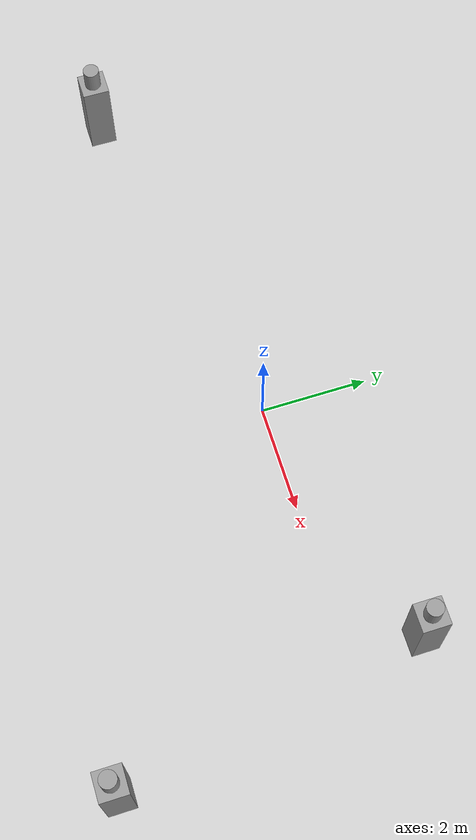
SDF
<sdf version="1.6">
 <world name="default">
  <light name="sun" type="directional">
   <pose>0 0 10 0 -0 0</pose>
   <diffuse>0.8 0.8 0.8 1</diffuse>
   <specular>0.2 0.2 0.2 1</specular>
   <attenuation>
    <range>1000</range>
    <constant>0.9</constant>
    <linear>0.01</linear>
    <quadratic>0.001</quadratic>
   </attenuation>
   <direction>-0.5 0.1 -0.9</direction>
  </light>
  <model name="ground_plane">
   <static>1</static>
   <link name="link">
    <collision name="collision">
     <geometry><plane><normal>0 0 1</normal><size>100 100</size></plane></geometry>
     <surface>
      <contact><collide_bitmask>65535</collide_bitmask></contact>
      <friction><ode><mu>100</mu><mu2>50</mu2></ode></friction>
     </surface>
    </collision>
    <visual name="visual">
     <cast_shadows>0</cast_shadows>
     <geometry><plane><normal>0 0 1</normal><size>100 100</size></plane></geometry>
     <material>
      <script><uri>file://media/materials/scripts/gazebo.material</uri><name>Gazebo/Grey</name></script>
     </material>
    </visual>
   </link>
  </model>
  <physics name="default_physics" default="0" type="ode">
   <real_time_update_rate>1000</real_time_update_rate>
   <max_step_size>0.001</max_step_size>
   <real_time_factor>1</real_time_factor>
   <ode>
    <solver>
     <type>quick</type>
     <iters>150</iters>
     <precon_iters>0</precon_iters>
     <sor>1.4</sor>
     <use_dynamic_moi_rescaling>1</use_dynamic_moi_rescaling>
    </solver>
    <constraints>
     <cfm>1e-05</cfm>
     <erp>0.2</erp>
     <contact_max_correcting_vel>2000</contact_max_correcting_vel>
     <contact_surface_layer>0.01</contact_surface_layer>
    </constraints>
   </ode>
  </physics>
  <scene><ambient>0.4 0.4 0.4 1</ambient><background>0.7 0.7 0.7 1</background><shadows>1</shadows></scene>
  <gravity>0 0 -9.8</gravity>
  <magnetic_field>6e-06 2.3e-05 -4.2e-05</magnetic_field>
  <atmosphere type="adiabatic"/>
  <audio><device>default</device></audio>
  <spherical_coordinates>
   <surface_model>EARTH_WGS84</surface_model>
   <latitude_deg>0</latitude_deg>
   <longitude_deg>0</longitude_deg>
   <elevation>0</elevation>
   <heading_deg>0</heading_deg>
  </spherical_coordinates>
  <model name="Person">
   <link name="link_1">
    <inertial>
     <mass>1</mass>
     <inertia>
      <ixx>0.166667</ixx>
      <ixy>0</ixy>
      <ixz>0</ixz>
      <iyy>0.166667</iyy>
      <iyz>0</iyz>
      <izz>0.166667</izz>
     </inertia>
     <pose>0 0 0.8 0 -0 0</pose>
    </inertial>
    <pose>0 0 0.8 0 -0 0</pose>
    <visual name="visual">
     <geometry><box><size>0.5 0.5 1.6</size></box></geometry>
     <material>
      <lighting>1</lighting>
      <script><uri>file://media/materials/scripts/gazebo.material</uri><name>Gazebo/Grey</name></script>
      <shader type="vertex"><normal_map>__default__</normal_map></shader>
      <ambient>0.3 0.3 0.3 1</ambient>
      <diffuse>0.7 0.7 0.7 1</diffuse>
      <specular>0.01 0.01 0.01 1</specular>
      <emissive>0 0 0 1</emissive>
     </material>
    </visual>
    <collision name="collision">
     <geometry><box><size>0.5 0.5 1.6</size></box></geometry>
     <surface>
      <friction>
       <ode><mu>1</mu><mu2>1</mu2><fdir1>0 0 0</fdir1><slip1>0</slip1><slip2>0</slip2></ode>
       <torsional>
        <coefficient>1</coefficient>
        <patch_radius>0</patch_radius>
        <surface_radius>0</surface_radius>
        <use_patch_radius>1</use_patch_radius>
        <ode><slip>0</slip></ode>
       </torsional>
      </friction>
      <bounce><restitution_coefficient>0</restitution_coefficient><threshold>1e+06</threshold></bounce>
      <contact>
       <collide_without_contact>0</collide_without_contact>
       <collide_without_contact_bitmask>1</collide_without_contact_bitmask>
       <collide_bitmask>1</collide_bitmask>
       <ode>
        <soft_cfm>0</soft_cfm>
        <soft_erp>0.2</soft_erp>
        <kp>1e+13</kp>
        <kd>1</kd>
        <max_vel>0.01</max_vel>
        <min_depth>0</min_depth>
       </ode>
       <bullet>
        <split_impulse>1</split_impulse>
        <split_impulse_penetration_threshold>-0.01</split_impulse_penetration_threshold>
        <soft_cfm>0</soft_cfm>
        <soft_erp>0.2</soft_erp>
        <kp>1e+13</kp>
        <kd>1</kd>
       </bullet>
      </contact>
     </surface>
    </collision>
   </link>
   <link name="link_4">
    <inertial>
     <mass>1</mass>
     <inertia><ixx>0.145833</ixx><ixy>0</ixy><ixz>0</ixz><iyy>0.145833</iyy><iyz>0</iyz><izz>0.125</izz></inertia>
    </inertial>
    <pose>0 0 1.8 0 -0 0</pose>
    <visual name="visual">
     <geometry><cylinder><radius>0.15</radius><length>0.4</length></cylinder></geometry>
     <material>
      <lighting>1</lighting>
      <script><uri>file://media/materials/scripts/gazebo.material</uri><name>Gazebo/Grey</name></script>
      <shader type="vertex"><normal_map>__default__</normal_map></shader>
      <ambient>0.3 0.3 0.3 1</ambient>
      <diffuse>0.7 0.7 0.7 1</diffuse>
      <specular>0.01 0.01 0.01 1</specular>
      <emissive>0 0 0 1</emissive>
     </material>
    </visual>
    <collision name="collision">
     <geometry><cylinder><radius>0.15</radius><length>0.4</length></cylinder></geometry>
     <surface>
      <friction>
       <ode><mu>1</mu><mu2>1</mu2><fdir1>0 0 0</fdir1><slip1>0</slip1><slip2>0</slip2></ode>
       <torsional>
        <coefficient>1</coefficient>
        <patch_radius>0</patch_radius>
        <surface_radius>0</surface_radius>
        <use_patch_radius>1</use_patch_radius>
        <ode><slip>0</slip></ode>
       </torsional>
      </friction>
      <bounce><restitution_coefficient>0</restitution_coefficient><threshold>1e+06</threshold></bounce>
      <contact>
       <collide_without_contact>0</collide_without_contact>
       <collide_without_contact_bitmask>1</collide_without_contact_bitmask>
       <collide_bitmask>1</collide_bitmask>
       <ode>
        <soft_cfm>0</soft_cfm>
        <soft_erp>0.2</soft_erp>
        <kp>1e+13</kp>
        <kd>1</kd>
        <max_vel>0.01</max_vel>
        <min_depth>0</min_depth>
       </ode>
       <bullet>
        <split_impulse>1</split_impulse>
        <split_impulse_penetration_threshold>-0.01</split_impulse_penetration_threshold>
        <soft_cfm>0</soft_cfm>
        <soft_erp>0.2</soft_erp>
        <kp>1e+13</kp>
        <kd>1</kd>
       </bullet>
      </contact>
     </surface>
    </collision>
   </link>
   <joint name="link_4_JOINT_1" type="fixed">
    <parent>link_4</parent>
    <child>link_1</child>
    <physics>
     <ode><limit><cfm>0</cfm><erp>0.2</erp></limit><suspension><cfm>0</cfm><erp>0.2</erp></suspension></ode>
    </physics>
   </joint>
   <static>0</static>
   <pose>5.88471 -4.34345 1e-06 -2e-06 1e-06 -0.001049</pose>
  </model>
  <model name="Person_0">
   <link name="link_1">
    <inertial>
     <mass>1</mass>
     <inertia>
      <ixx>0.166667</ixx>
      <ixy>0</ixy>
      <ixz>0</ixz>
      <iyy>0.166667</iyy>
      <iyz>0</iyz>
      <izz>0.166667</izz>
     </inertia>
     <pose>0 0 0.8 0 -0 0</pose>
    </inertial>
    <pose>0 0 0.8 0 -0 0</pose>
    <visual name="visual">
     <geometry><box><size>0.5 0.5 1.6</size></box></geometry>
     <material>
      <lighting>1</lighting>
      <script><uri>file://media/materials/scripts/gazebo.material</uri><name>Gazebo/Grey</name></script>
      <shader type="vertex"><normal_map>__default__</normal_map></shader>
      <ambient>0.3 0.3 0.3 1</ambient>
      <diffuse>0.7 0.7 0.7 1</diffuse>
      <specular>0.01 0.01 0.01 1</specular>
      <emissive>0 0 0 1</emissive>
     </material>
    </visual>
    <collision name="collision">
     <geometry><box><size>0.5 0.5 1.6</size></box></geometry>
     <surface>
      <friction>
       <ode><mu>1</mu><mu2>1</mu2><fdir1>0 0 0</fdir1><slip1>0</slip1><slip2>0</slip2></ode>
       <torsional>
        <coefficient>1</coefficient>
        <patch_radius>0</patch_radius>
        <surface_radius>0</surface_radius>
        <use_patch_radius>1</use_patch_radius>
        <ode><slip>0</slip></ode>
       </torsional>
      </friction>
      <bounce><restitution_coefficient>0</restitution_coefficient><threshold>1e+06</threshold></bounce>
      <contact>
       <collide_without_contact>0</collide_without_contact>
       <collide_without_contact_bitmask>1</collide_without_contact_bitmask>
       <collide_bitmask>1</collide_bitmask>
       <ode>
        <soft_cfm>0</soft_cfm>
        <soft_erp>0.2</soft_erp>
        <kp>1e+13</kp>
        <kd>1</kd>
        <max_vel>0.01</max_vel>
        <min_depth>0</min_depth>
       </ode>
       <bullet>
        <split_impulse>1</split_impulse>
        <split_impulse_penetration_threshold>-0.01</split_impulse_penetration_threshold>
        <soft_cfm>0</soft_cfm>
        <soft_erp>0.2</soft_erp>
        <kp>1e+13</kp>
        <kd>1</kd>
       </bullet>
      </contact>
     </surface>
    </collision>
   </link>
   <link name="link_4">
    <inertial>
     <mass>1</mass>
     <inertia><ixx>0.145833</ixx><ixy>0</ixy><ixz>0</ixz><iyy>0.145833</iyy><iyz>0</iyz><izz>0.125</izz></inertia>
    </inertial>
    <pose>0 0 1.8 0 -0 0</pose>
    <visual name="visual">
     <geometry><cylinder><radius>0.15</radius><length>0.4</length></cylinder></geometry>
     <material>
      <lighting>1</lighting>
      <script><uri>file://media/materials/scripts/gazebo.material</uri><name>Gazebo/Grey</name></script>
      <shader type="vertex"><normal_map>__default__</normal_map></shader>
      <ambient>0.3 0.3 0.3 1</ambient>
      <diffuse>0.7 0.7 0.7 1</diffuse>
      <specular>0.01 0.01 0.01 1</specular>
      <emissive>0 0 0 1</emissive>
     </material>
    </visual>
    <collision name="collision">
     <geometry><cylinder><radius>0.15</radius><length>0.4</length></cylinder></geometry>
     <surface>
      <friction>
       <ode><mu>1</mu><mu2>1</mu2><fdir1>0 0 0</fdir1><slip1>0</slip1><slip2>0</slip2></ode>
       <torsional>
        <coefficient>1</coefficient>
        <patch_radius>0</patch_radius>
        <surface_radius>0</surface_radius>
        <use_patch_radius>1</use_patch_radius>
        <ode><slip>0</slip></ode>
       </torsional>
      </friction>
      <bounce><restitution_coefficient>0</restitution_coefficient><threshold>1e+06</threshold></bounce>
      <contact>
       <collide_without_contact>0</collide_without_contact>
       <collide_without_contact_bitmask>1</collide_without_contact_bitmask>
       <collide_bitmask>1</collide_bitmask>
       <ode>
        <soft_cfm>0</soft_cfm>
        <soft_erp>0.2</soft_erp>
        <kp>1e+13</kp>
        <kd>1</kd>
        <max_vel>0.01</max_vel>
        <min_depth>0</min_depth>
       </ode>
       <bullet>
        <split_impulse>1</split_impulse>
        <split_impulse_penetration_threshold>-0.01</split_impulse_penetration_threshold>
        <soft_cfm>0</soft_cfm>
        <soft_erp>0.2</soft_erp>
        <kp>1e+13</kp>
        <kd>1</kd>
       </bullet>
      </contact>
     </surface>
    </collision>
   </link>
   <joint name="link_4_JOINT_1" type="fixed">
    <parent>link_4</parent>
    <child>link_1</child>
    <physics>
     <ode><limit><cfm>0</cfm><erp>0.2</erp></limit><suspension><cfm>0</cfm><erp>0.2</erp></suspension></ode>
    </physics>
   </joint>
   <static>0</static>
   <pose>4.89306 1.28247 1e-06 2e-06 5e-06 -2e-06</pose>
  </model>
  <model name="Person_1">
   <link name="link_1">
    <inertial>
     <mass>1</mass>
     <inertia>
      <ixx>0.166667</ixx>
      <ixy>0</ixy>
      <ixz>0</ixz>
      <iyy>0.166667</iyy>
      <iyz>0</iyz>
      <izz>0.166667</izz>
     </inertia>
     <pose>0 0 0.8 0 -0 0</pose>
    </inertial>
    <pose>0 0 0.8 0 -0 0</pose>
    <visual name="visual">
     <geometry><box><size>0.5 0.5 1.6</size></box></geometry>
     <material>
      <lighting>1</lighting>
      <script><uri>file://media/materials/scripts/gazebo.material</uri><name>Gazebo/Grey</name></script>
      <shader type="vertex"><normal_map>__default__</normal_map></shader>
      <ambient>0.3 0.3 0.3 1</ambient>
      <diffuse>0.7 0.7 0.7 1</diffuse>
      <specular>0.01 0.01 0.01 1</specular>
      <emissive>0 0 0 1</emissive>
     </material>
    </visual>
    <collision name="collision">
     <geometry><box><size>0.5 0.5 1.6</size></box></geometry>
     <surface>
      <friction>
       <ode><mu>1</mu><mu2>1</mu2><fdir1>0 0 0</fdir1><slip1>0</slip1><slip2>0</slip2></ode>
       <torsional>
        <coefficient>1</coefficient>
        <patch_radius>0</patch_radius>
        <surface_radius>0</surface_radius>
        <use_patch_radius>1</use_patch_radius>
        <ode><slip>0</slip></ode>
       </torsional>
      </friction>
      <bounce><restitution_coefficient>0</restitution_coefficient><threshold>1e+06</threshold></bounce>
      <contact>
       <collide_without_contact>0</collide_without_contact>
       <collide_without_contact_bitmask>1</collide_without_contact_bitmask>
       <collide_bitmask>1</collide_bitmask>
       <ode>
        <soft_cfm>0</soft_cfm>
        <soft_erp>0.2</soft_erp>
        <kp>1e+13</kp>
        <kd>1</kd>
        <max_vel>0.01</max_vel>
        <min_depth>0</min_depth>
       </ode>
       <bullet>
        <split_impulse>1</split_impulse>
        <split_impulse_penetration_threshold>-0.01</split_impulse_penetration_threshold>
        <soft_cfm>0</soft_cfm>
        <soft_erp>0.2</soft_erp>
        <kp>1e+13</kp>
        <kd>1</kd>
       </bullet>
      </contact>
     </surface>
    </collision>
   </link>
   <link name="link_4">
    <inertial>
     <mass>1</mass>
     <inertia><ixx>0.145833</ixx><ixy>0</ixy><ixz>0</ixz><iyy>0.145833</iyy><iyz>0</iyz><izz>0.125</izz></inertia>
    </inertial>
    <pose>0 0 1.8 0 -0 0</pose>
    <visual name="visual">
     <geometry><cylinder><radius>0.15</radius><length>0.4</length></cylinder></geometry>
     <material>
      <lighting>1</lighting>
      <script><uri>file://media/materials/scripts/gazebo.material</uri><name>Gazebo/Grey</name></script>
      <shader type="vertex"><normal_map>__default__</normal_map></shader>
      <ambient>0.3 0.3 0.3 1</ambient>
      <diffuse>0.7 0.7 0.7 1</diffuse>
      <specular>0.01 0.01 0.01 1</specular>
      <emissive>0 0 0 1</emissive>
     </material>
    </visual>
    <collision name="collision">
     <geometry><cylinder><radius>0.15</radius><length>0.4</length></cylinder></geometry>
     <surface>
      <friction>
       <ode><mu>1</mu><mu2>1</mu2><fdir1>0 0 0</fdir1><slip1>0</slip1><slip2>0</slip2></ode>
       <torsional>
        <coefficient>1</coefficient>
        <patch_radius>0</patch_radius>
        <surface_radius>0</surface_radius>
        <use_patch_radius>1</use_patch_radius>
        <ode><slip>0</slip></ode>
       </torsional>
      </friction>
      <bounce><restitution_coefficient>0</restitution_coefficient><threshold>1e+06</threshold></bounce>
      <contact>
       <collide_without_contact>0</collide_without_contact>
       <collide_without_contact_bitmask>1</collide_without_contact_bitmask>
       <collide_bitmask>1</collide_bitmask>
       <ode>
        <soft_cfm>0</soft_cfm>
        <soft_erp>0.2</soft_erp>
        <kp>1e+13</kp>
        <kd>1</kd>
        <max_vel>0.01</max_vel>
        <min_depth>0</min_depth>
       </ode>
       <bullet>
        <split_impulse>1</split_impulse>
        <split_impulse_penetration_threshold>-0.01</split_impulse_penetration_threshold>
        <soft_cfm>0</soft_cfm>
        <soft_erp>0.2</soft_erp>
        <kp>1e+13</kp>
        <kd>1</kd>
       </bullet>
      </contact>
     </surface>
    </collision>
   </link>
   <joint name="link_4_JOINT_1" type="fixed">
    <parent>link_4</parent>
    <child>link_1</child>
    <physics>
     <ode><limit><cfm>0</cfm><erp>0.2</erp></limit><suspension><cfm>0</cfm><erp>0.2</erp></suspension></ode>
    </physics>
   </joint>
   <static>0</static>
   <pose>-6.88344 -1.2411 -0 1e-06 -1e-06 -0.001076</pose>
  </model>
 </world>
</sdf>
